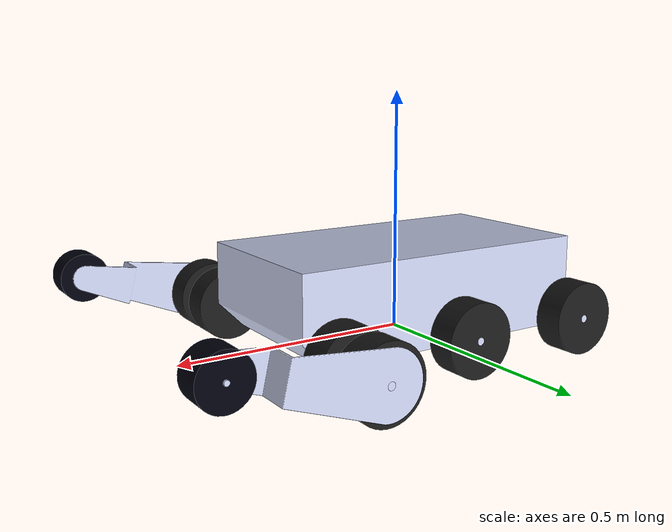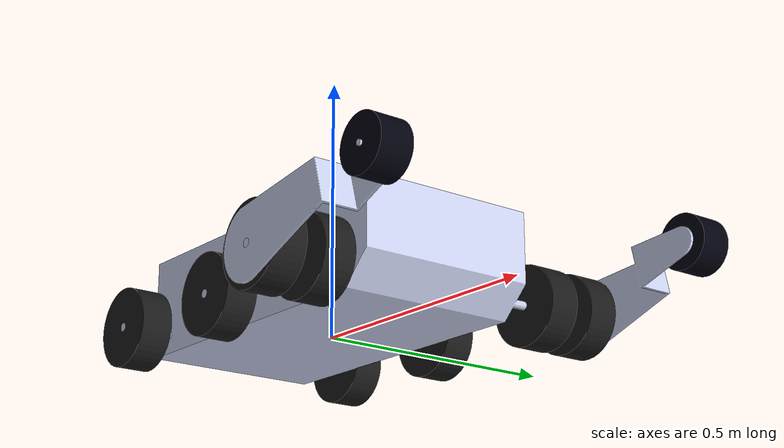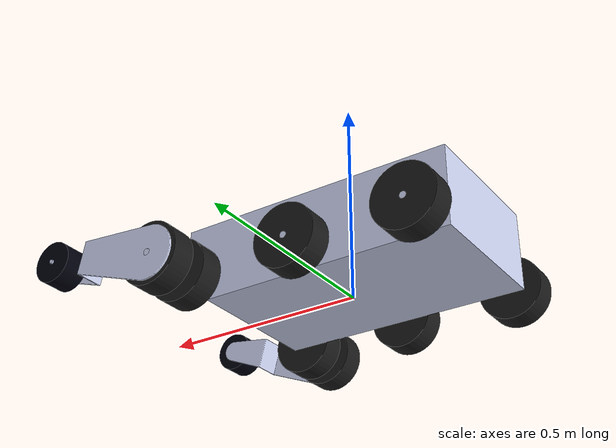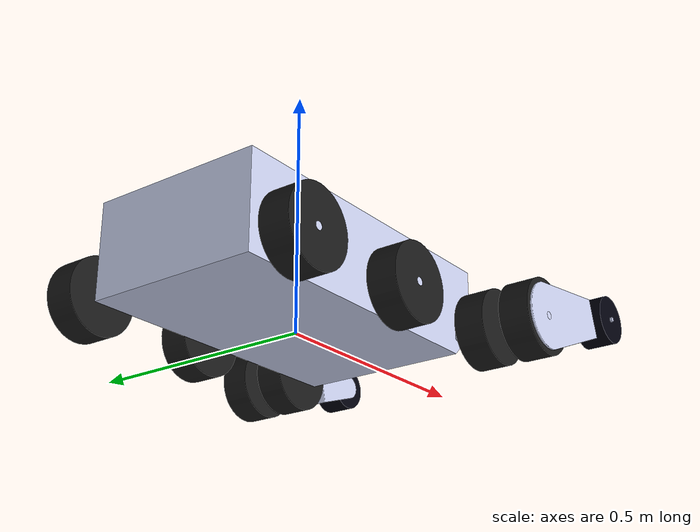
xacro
<?xml version="1.0" encoding="utf-8"?>

<robot
  xmlns:xacro="http://www.ros.org/wiki/xacro"

  name="hendbot">

    <material name="white">
        <color rgba="1 1 1 1" />
    </material>

    <material name="orange">
        <color rgba="1 0.3 0.1 1" />
    </material>

    <material name="blue">
        <color rgba="0.2 0.2 1 1" />
    </material>

    <material name="black">
        <color rgba="0 0 0 1" />
    </material>

  <link name="base_link">

  </link>

  <!-- BASE_FOOTPRINT LINK -->

  <joint name="base_footprint_joint" type="fixed">
      <parent link="base_link"/>
      <child link="base_footprint"/>
      <origin xyz="0 0 0" rpy="0 0 0"/>
  </joint>

  <link name="base_footprint">
  </link>

  <link
    name="hend_link">
    <inertial>
      <origin
        xyz="0.328696423253543 -2.60874698367187E-17 0.0950289066631501"
        rpy="0 0 0" />
      <mass
        value="430.4880454963273" />
      <inertia
        ixx="0.580105726031867"
        ixy="4.51081599921307E-16"
        ixz="-0.0125188942101638"
        iyy="1.698173281021"
        iyz="1.45266351536115E-16"
        izz="2.0236419336975" />
    </inertial>
    <visual>
      <origin
        xyz="0 0 0"
        rpy="0 0 0" />
      <geometry>
        <mesh
          filename="package://hendbot/meshes/base_link.STL" />
      </geometry>
      <material
        name="">
        <color
          rgba="0.792156862745098 0.819607843137255 0.933333333333333 1" />
      </material>
    </visual>
    <collision>
      <origin
        xyz="0 0 0"
        rpy="0 0 0" />
      <geometry>
        <mesh
          filename="package://hendbot/meshes/base_link.STL" />
      </geometry>
    </collision>
  </link>

      <joint name="hend_joint" type="fixed">
        <parent link="base_link" />
        <child link="hend_link" />
        <origin xyz="-0.33246 0 0" />
    </joint>

    <gazebo reference="hend_link">
        <material>Gazebo/Black</material>
    </gazebo>

  <link
    name="RBW_Link">
    <inertial>
      <origin
        xyz="-5.55111512312578E-17 -6.93889390390723E-18 -0.0300000000000001"
        rpy="0 0 0" />
      <mass
        value="2.83020427295128" />
      <inertia
        ixx="0.00487431930909034"
        ixy="2.16840434497101E-19"
        ixz="-2.6439984961889E-21"
        iyy="0.00487431930909034"
        iyz="7.20071906052003E-21"
        izz="0.00805051605440992" />
    </inertial>
    <visual>
      <origin
        xyz="0 0 0"
        rpy="0 0 0" />
      <geometry>
        <mesh
          filename="package://hendbot/meshes/RBW_Link.STL" />
      </geometry>
      <material
        name="">
        <color
          rgba="0.101960784313725 0.101960784313725 0.101960784313725 1" />
      </material>
    </visual>
    <collision>
      <origin
        xyz="0 0 0"
        rpy="0 0 0" />
      <geometry>
        <mesh
          filename="package://hendbot/meshes/RBW_Link.STL" />
      </geometry>
    </collision>
  </link>
  <joint
    name="RBW_Joint"
    type="fixed">
    <origin
      xyz="0.05 -0.215 0.035"
      rpy="-1.5708 0.11175 0" />
    <parent
      link="hend_link" />
    <child
      link="RBW_Link" />
    <axis
      xyz="0 0 1" />
    <limit
      effort="100"
      velocity="100" />
    <dynamics
      damping="0.1"
      friction="0.1" />
  </joint>

     <gazebo reference="RBW_Link">
        <material>Gazebo/Orange</material>
        <mu1 value="0.04" />
        <mu2 value="0.04" />
    </gazebo>

  <link
    name="LBW_Link">
    <inertial>
      <origin
        xyz="-5.55111512312578E-17 1.66533453693773E-16 0.03"
        rpy="0 0 0" />
      <mass
        value="2.83020427295128" />
      <inertia
        ixx="0.00487431930909034"
        ixy="-5.42101086242752E-19"
        ixz="-7.92471037265887E-20"
        iyy="0.00487431930909034"
        iyz="2.11365740243217E-19"
        izz="0.00805051605440992" />
    </inertial>
    <visual>
      <origin
        xyz="0 0 0"
        rpy="0 0 0" />
      <geometry>
        <mesh
          filename="package://hendbot/meshes/LBW_Link.STL" />
      </geometry>
      <material
        name="">
        <color
          rgba="0.101960784313725 0.101960784313725 0.101960784313725 1" />
      </material>
    </visual>
    <collision>
      <origin
        xyz="0 0 0"
        rpy="0 0 0" />
      <geometry>
        <mesh
          filename="package://hendbot/meshes/LBW_Link.STL" />
      </geometry>
    </collision>
  </link>
  <joint
    name="LBW_Joint"
    type="fixed">
    <origin
      xyz="0.05 0.215 0.035"
      rpy="1.5708 -1.1717 3.1416" />
    <parent
      link="hend_link" />
    <child
      link="LBW_Link" />
    <axis
      xyz="0 0 1" />
    <limit
      effort="100"
      velocity="100" />
    <dynamics
      damping="0.1"
      friction="0.1" />
  </joint>

      <gazebo reference="LBW_Link">
        <material>Gazebo/Orange</material>
        <mu1 value="0.04" />
        <mu2 value="0.04" />
    </gazebo>

  <link
    name="WRBelt_Link">
    <inertial>
      <origin
        xyz="-5.06990479587008E-06 3.91305833367592E-06 -0.03"
        rpy="0 0 0" />
      <mass
        value="2.83020427295128" />
      <inertia
        ixx="0.00487431930909035"
        ixy="2.16840434497101E-19"
        ixz="9.79617266491298E-36"
        iyy="0.00487431930909035"
        iyz="7.94183936865276E-36"
        izz="0.00805051605440992" />
    </inertial>
    <visual>
      <origin
        xyz="0 0 0"
        rpy="0 0 0" />
      <geometry>
        <mesh
          filename="package://hendbot/meshes/WRBelt_Link.STL" />
      </geometry>
      <material
        name="">
        <color
          rgba="0.101960784313725 0.101960784313725 0.101960784313725 1" />
      </material>
    </visual>
    <collision>
      <origin
        xyz="0 0 0"
        rpy="0 0 0" />
      <geometry>
        <mesh
          filename="package://hendbot/meshes/WRBelt_Link.STL" />
      </geometry>
    </collision>
  </link>
  <joint
    name="WRBelt_Joint"
    type="continuous">
    <origin
      xyz="0.00004 -0.215 0.035052"
      rpy="-1.5708 0.65732 0" />
    <parent
      link="base_link" />
    <child
      link="WRBelt_Link" />
    <axis
      xyz="0 0 1" />
    <limit
      effort="100"
      velocity="100" />
    <dynamics
      damping="0.1"
      friction="0.1" />
  </joint>

    <gazebo reference="WRBelt_Link">
        <material>Gazebo/Blue</material>
    </gazebo>

  <link
    name="WLBelt_Link">
    <inertial>
      <origin
        xyz="6.00761815290098E-06 2.21911790831281E-06 0.03"
        rpy="0 0 0" />
      <mass
        value="2.83020427295128" />
      <inertia
        ixx="0.00487431930909034"
        ixy="1.0842021724855E-19"
        ixz="-5.9576058536142E-21"
        iyy="0.00487431930909034"
        iyz="-3.72125275370687E-22"
        izz="0.00805051605440991" />
    </inertial>
    <visual>
      <origin
        xyz="0 0 0"
        rpy="0 0 0" />
      <geometry>
        <mesh
          filename="package://hendbot/meshes/WLBelt_Link.STL" />
      </geometry>
      <material
        name="">
        <color
          rgba="0.101960784313725 0.101960784313725 0.101960784313725 1" />
      </material>
    </visual>
    <collision>
      <origin
        xyz="0 0 0"
        rpy="0 0 0" />
      <geometry>
        <mesh
          filename="package://hendbot/meshes/WLBelt_Link.STL" />
      </geometry>
    </collision>
  </link>
  <joint
    name="WLBelt_Joint"
    type="continuous">
    <origin
      xyz="0.00004 0.215 0.035052"
      rpy="1.5708 0.35384 -3.1416" />
    <parent
      link="base_link" />
    <child
      link="WLBelt_Link" />
    <axis
      xyz="0 0 1" />
    <limit
      effort="100"
      velocity="100" />
    <dynamics
      damping="0.1"
      friction="0.1" />
  </joint>

    <gazebo reference="WLBelt_Link">
        <material>Gazebo/Blue</material>
    </gazebo>

  <link
    name="RFW_Link">
    <inertial>
      <origin
        xyz="1.11022302462516E-16 5.55111512312578E-17 -0.0299999999999999"
        rpy="0 0 0" />
      <mass
        value="2.83020427295128" />
      <inertia
        ixx="0.00487431930909035"
        ixy="5.42101086242752E-19"
        ixz="-1.31497251854061E-19"
        iyy="0.00487431930909034"
        iyz="-2.24427537663732E-19"
        izz="0.00805051605440992" />
    </inertial>
    <visual>
      <origin
        xyz="0 0 0"
        rpy="0 0 0" />
      <geometry>
        <mesh
          filename="package://hendbot/meshes/RFW_Link.STL" />
      </geometry>
      <material
        name="">
        <color
          rgba="0.101960784313725 0.101960784313725 0.101960784313725 1" />
      </material>
    </visual>
    <collision>
      <origin
        xyz="0 0 0"
        rpy="0 0 0" />
      <geometry>
        <mesh
          filename="package://hendbot/meshes/RFW_Link.STL" />
      </geometry>
    </collision>
  </link>
  <joint
    name="RFW_joint"
    type="fixed">
    <origin
      xyz="0.61491 -0.215 0.035103"
      rpy="1.5708 0.34292 -3.1416" />
    <parent
      link="hend_link" />
    <child
      link="RFW_Link" />
    <axis
      xyz="0 0 1" />
    <limit
      effort="100"
      velocity="100" />
    <dynamics
      damping="0.1"
      friction="0.1" />
  </joint>

    <gazebo reference="RFW_Link">
        <material>Gazebo/Orange</material>
        <mu1 value="0.04" />
        <mu2 value="0.04" />
    </gazebo>

  <link
    name="LFW_Link">
    <inertial>
      <origin
        xyz="8.32667268468867E-17 5.55111512312578E-17 0.0299999999999999"
        rpy="0 0 0" />
      <mass
        value="2.83020427295128" />
      <inertia
        ixx="0.00487431930909034"
        ixy="0"
        ixz="-1.10167760345487E-18"
        iyy="0.00487431930909034"
        iyz="-2.59138014296351E-20"
        izz="0.00805051605440992" />
    </inertial>
    <visual>
      <origin
        xyz="0 0 0"
        rpy="0 0 0" />
      <geometry>
        <mesh
          filename="package://hendbot/meshes/LFW_Link.STL" />
      </geometry>
      <material
        name="">
        <color
          rgba="0.101960784313725 0.101960784313725 0.101960784313725 1" />
      </material>
    </visual>
    <collision>
      <origin
        xyz="0 0 0"
        rpy="0 0 0" />
      <geometry>
        <mesh
          filename="package://hendbot/meshes/LFW_Link.STL" />
      </geometry>
    </collision>
  </link>
  <joint
    name="LFW_Joint"
    type="fixed">
    <origin
      xyz="0.61491 0.215 0.035103"
      rpy="1.5708 0.76776 -3.1416" />
    <parent
      link="hend_link" />
    <child
      link="LFW_Link" />
    <axis
      xyz="0 0 1" />
    <limit
      effort="100"
      velocity="100" />
    <dynamics
      damping="0.1"
      friction="0.1" />
  </joint>

    <gazebo reference="LFW_Link">
        <material>Gazebo/Orange</material>
        <mu1 value="0.04" />
        <mu2 value="0.04" />
    </gazebo>

  <link
    name="RFFW_Link">
    <inertial>
      <origin
        xyz="2.77555756156289E-17 -2.77555756156289E-17 -0.0300000000000004"
        rpy="0 0 0" />
      <mass
        value="2.83020427295128" />
      <inertia
        ixx="0"
        ixy="0"
        ixz="0"
        iyy="0"
        iyz="0"
        izz="0" />
    </inertial>
    <visual>
      <origin
        xyz="0 0 0"
        rpy="0 0 0" />
      <geometry>
        <mesh
          filename="package://hendbot/meshes/RFFW_Link.STL" />
      </geometry>
      <material
        name="">
        <color
          rgba="0.101960784313725 0.101960784313725 0.101960784313725 1" />
      </material>
    </visual>
    <collision>
      <origin
        xyz="0 0 0"
        rpy="0 0 0" />
      <geometry>
        <mesh
          filename="package://hendbot/meshes/RFFW_Link.STL" />
      </geometry>
    </collision>
  </link>
  <joint
    name="RFFW_Joint"
    type="continuous">
    <origin
      xyz="0.61491 -0.31 0.035103"
      rpy="-1.5708 -0.76747 0" />
    <parent
      link="hend_link" />
    <child
      link="RFFW_Link" />
    <axis
      xyz="0 0 1" />
    <limit
      lower="0"
      upper="0.785"
      effort="100"
      velocity="100" />
    <dynamics
      damping="0.1"
      friction="0.1" />
  </joint>

    <gazebo reference="RFFW_Link">
        <material>Gazebo/Orange</material>
        <mu1 value="0.04" />
        <mu2 value="0.04" />
    </gazebo>

  <link
    name="RF_Link">
    <inertial>
      <origin
        xyz="0.116802763167045 -0.00888303440495468 -0.0451647957579333"
        rpy="0 0 0" />
      <mass
        value="0.204447676178174" />
      <inertia
        ixx="0.000307626591941256"
        ixy="6.45911023981527E-06"
        ixz="-0.000427165594157326"
        iyy="0.00234079047956499"
        iyz="1.81632274337046E-06"
        izz="0.0023527687683258" />
    </inertial>
    <visual>
      <origin
        xyz="0 0 0"
        rpy="0 0 0" />
      <geometry>
        <mesh
          filename="package://hendbot/meshes/RF_Link.STL" />
      </geometry>
      <material
        name="">
        <color
          rgba="0.792156862745098 0.819607843137255 0.933333333333333 1" />
      </material>
    </visual>
    <collision>
      <origin
        xyz="0 0 0"
        rpy="0 0 0" />
      <geometry>
        <mesh
          filename="package://hendbot/meshes/RF_Link.STL" />
      </geometry>
    </collision>
  </link>
  <joint
    name="RF_Joint"
    type="fixed">
    <origin
      xyz="0 0.01 0"
      rpy="0 0 0.504452455101276" />
    <parent
      link="RFFW_Link" />
    <child
      link="RF_Link" />
    <axis
      xyz="0 0 0" />
    <limit
      lower="0"
      upper="0"
      effort="0"
      velocity="0" />
  </joint>
  <link
    name="RW_Link">
    <inertial>
      <origin
        xyz="8.32667268468867E-17 5.55111512312578E-16 -0.03"
        rpy="0 0 0" />
      <mass
        value="0.466526509058084" />
      <inertia
        ixx="0.000434452811560341"
        ixy="-4.1972501374133E-21"
        ixz="-1.25523865608312E-20"
        iyy="0.000434452811560341"
        iyz="2.74929016542641E-21"
        izz="0.000588989717685832" />
    </inertial>
    <visual>
      <origin
        xyz="0 0 0"
        rpy="0 0 0" />
      <geometry>
        <mesh
          filename="package://hendbot/meshes/RW_Link.STL" />
      </geometry>
      <material
        name="">
        <color
          rgba="0 0 0.0470588235294118 1" />
      </material>
    </visual>
    <collision>
      <origin
        xyz="0 0 0"
        rpy="0 0 0" />
      <geometry>
        <mesh
          filename="package://hendbot/meshes/RW_Link.STL" />
      </geometry>
    </collision>
  </link>
  <joint
    name="RW_Joint"
    type="fixed">
    <origin
      xyz="0.29495 -0.010546 0"
      rpy="0 0 -1.3078" />
    <parent
      link="RF_Link" />
    <child
      link="RW_Link" />
    <axis
      xyz="0 0 1" />
    <limit
      lower="0"
      upper="0"
      effort="100"
      velocity="100" />
    <dynamics
      damping="0.1"
      friction="0.1" />
  </joint>

    <gazebo reference="RW_Link">
        <material>Gazebo/Orange</material>
        <mu1 value="0.04" />
        <mu2 value="0.04" />
    </gazebo>

  <link
    name="LFFW_Link">
    <inertial>
      <origin
        xyz="0 0 0.0300000000000001"
        rpy="0 0 0" />
      <mass
        value="2.83020427295128" />
      <inertia
        ixx="0"
        ixy="0"
        ixz="0"
        iyy="0"
        iyz="0"
        izz="0" />
    </inertial>
    <visual>
      <origin
        xyz="0 0 0"
        rpy="0 0 0" />
      <geometry>
        <mesh
          filename="package://hendbot/meshes/LFFW_Link.STL" />
      </geometry>
      <material
        name="">
        <color
          rgba="0.101960784313725 0.101960784313725 0.101960784313725 1" />
      </material>
    </visual>
    <collision>
      <origin
        xyz="0 0 0"
        rpy="0 0 0" />
      <geometry>
        <mesh
          filename="package://hendbot/meshes/LFFW_Link.STL" />
      </geometry>
    </collision>
  </link>
  <joint
    name="LFFW_Joint"
    type="continuous">
    <origin
      xyz="0.61491 0.30998 0.035103"
      rpy="1.5708 -1.005 3.1416" />
    <parent
      link="hend_link" />
    <child
      link="LFFW_Link" />
    <axis
      xyz="0 0 1" />
    <limit
      lower="0"
      upper="0.785"
      effort="100"
      velocity="100" />
    <dynamics
      damping="0.1"
      friction="0.1" />
  </joint>

    <gazebo reference="LFFW_Link">
        <material>Gazebo/Orange</material>
        <mu1 value="0.04" />
        <mu2 value="0.04" />
    </gazebo>

  <link
    name="LF_Link">
    <inertial>
      <origin
        xyz="0.121636063593485 0.00012866330010497 0.0451847908566546"
        rpy="0 0 0" />
      <mass
        value="0.204447835856117" />
      <inertia
        ixx="0.000307626696889609"
        ixy="-6.45895372599709E-06"
        ixz="0.000427165888889448"
        iyy="0.00234079146265305"
        iyz="1.81619833910581E-06"
        izz="0.00235276956824831" />
    </inertial>
    <visual>
      <origin
        xyz="0 0 0"
        rpy="0 0 0" />
      <geometry>
        <mesh
          filename="package://hendbot/meshes/LF_Link.STL" />
      </geometry>
      <material
        name="">
        <color
          rgba="0.792156862745098 0.819607843137255 0.933333333333333 1" />
      </material>
    </visual>
    <collision>
      <origin
        xyz="0 0 0"
        rpy="0 0 0" />
      <geometry>
        <mesh
          filename="package://hendbot/meshes/LF_Link.STL" />
      </geometry>
    </collision>
  </link>
  <joint
    name="LF_Joint"
    type="fixed">
    <origin
      xyz="0 0 0"
      rpy="0 0 1.91705217764631" />
    <parent
      link="LFFW_Link" />
    <child
      link="LF_Link" />
    <axis
      xyz="0 0 0" />
  </joint>
  <link
    name="LW_Link">
    <inertial>
      <origin
        xyz="4.02455846426619E-16 1.11022302462516E-15 0.03"
        rpy="0 0 0" />
      <mass
        value="0.466526509058084" />
      <inertia
        ixx="0.000434452811560341"
        ixy="-5.43525904847875E-20"
        ixz="1.68763772702419E-20"
        iyy="0.000434452811560341"
        iyz="7.59802921517958E-21"
        izz="0.000588989717685832" />
    </inertial>
    <visual>
      <origin
        xyz="0 0 0"
        rpy="0 0 0" />
      <geometry>
        <mesh
          filename="package://hendbot/meshes/LW_Link.STL" />
      </geometry>
      <material
        name="">
        <color
          rgba="0 0 0.0470588235294118 1" />
      </material>
    </visual>
    <collision>
      <origin
        xyz="0 0 0"
        rpy="0 0 0" />
      <geometry>
        <mesh
          filename="package://hendbot/meshes/LW_Link.STL" />
      </geometry>
    </collision>
  </link>
  <joint
    name="LW_Joint"
    type="fixed">
    <origin
      xyz="0.299785014663327 0.00179117333342351 0"
      rpy="0 0 1.79029753611258" />
    <parent
      link="LF_Link" />
    <child
      link="LW_Link" />
    <axis
      xyz="0 0 -1" />
    <limit
      lower="0"
      upper="0.785"
      effort="100"
      velocity="100" />
    <dynamics
      damping="0.1"
      friction="0.1" />
  </joint>

      <gazebo reference="LW_Link">
        <material>Gazebo/Orange</material>
        <mu1 value="0.04" />
        <mu2 value="0.04" />
    </gazebo>
</robot>
